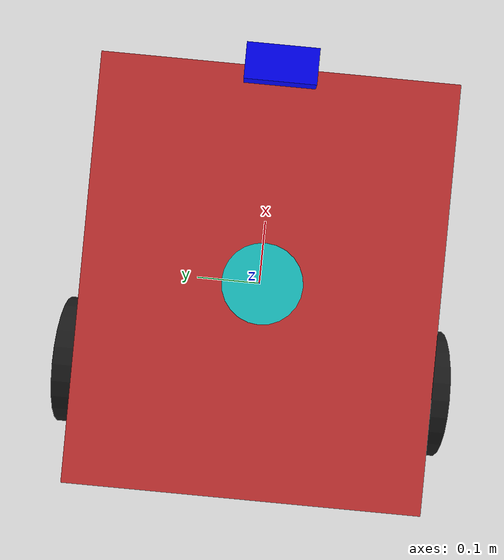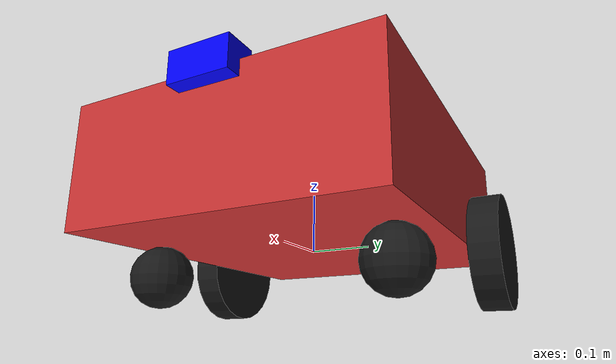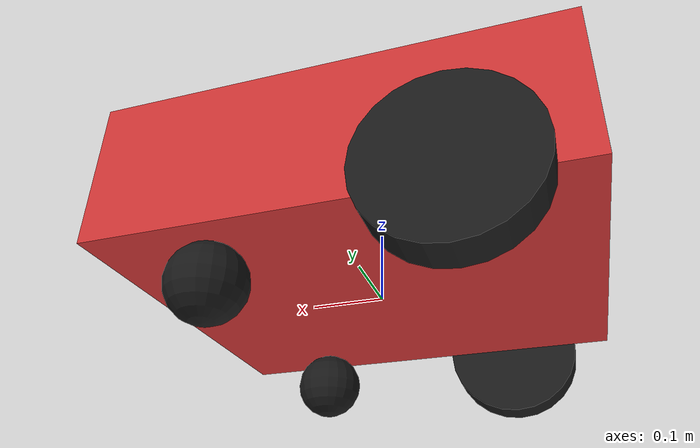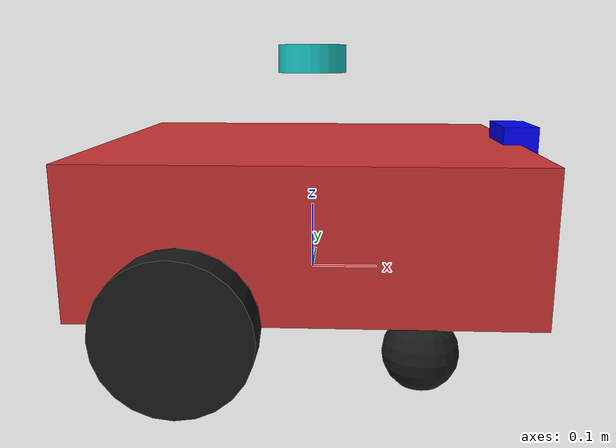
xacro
<?xml version="1.0"?>
<robot name="mobile_robot" xmlns:xacro="http://www.ros.org/wiki/xacro">

  <xacro:property name="chassis_length" value="0.6" />
  <xacro:property name="chassis_width" value="0.5" />
  <xacro:property name="chassis_height" value="0.2" />
  <xacro:property name="chassis_mass" value="5.0" />

  <xacro:property name="drive_wheel_radius" value="0.1" />
  <xacro:property name="drive_wheel_length" value="0.05" />
  <xacro:property name="drive_wheel_mass" value="0.5" />

  <xacro:property name="caster_wheel_radius" value="0.05" /> <xacro:property name="caster_wheel_mass" value="0.2" />

  <xacro:property name="wheel_separation" value="${chassis_width / 2 + drive_wheel_length / 2}" />
  <xacro:property name="drive_wheel_x_offset" value="-0.15" />
  <xacro:property name="caster_wheel_x_offset" value="0.15" />

  <material name="chassis_color">
    <color rgba="0.8 0.2 0.2 1"/>
  </material>
  <material name="wheel_color">
    <color rgba="0.1 0.1 0.1 1"/>
  </material>
  <material name="camera_color">
    <color rgba="0.0 0.0 1.0 1"/>
  </material>
  <material name="lidar_color">
    <color rgba="0.1 0.8 0.8 1"/>
  </material>

  <link name="base_link">
    <visual>
      <origin xyz="0 0 ${drive_wheel_radius}"/>
      <geometry>
        <box size="${chassis_length} ${chassis_width} ${chassis_height}"/>
      </geometry>
      <material name="chassis_color"/>
    </visual>
    <collision>
      <origin xyz="0 0 ${drive_wheel_radius}"/>
      <geometry>
        <box size="${chassis_length} ${chassis_width} ${chassis_height}"/>
      </geometry>
    </collision>
    <inertial>
      <origin xyz="0 0 ${drive_wheel_radius}"/>
      <mass value="${chassis_mass}"/>
      <inertia ixx="0.1" ixy="0" ixz="0" iyy="0.1" iyz="0" izz="0.1"/>
    </inertial>
  </link>
  <gazebo reference="base_link">
    <material>Gazebo/Red</material>
  </gazebo>

  <link name="drive_wheel_left_link">
    <visual>
      <geometry>
        <cylinder radius="${drive_wheel_radius}" length="${drive_wheel_length}"/>
      </geometry>
      <material name="wheel_color"/>
    </visual>
    <collision>
      <geometry>
        <cylinder radius="${drive_wheel_radius}" length="${drive_wheel_length}"/>
      </geometry>
    </collision>
    <inertial>
      <mass value="${drive_wheel_mass}"/>
      <inertia ixx="0.001" ixy="0" ixz="0" iyy="0.001" iyz="0" izz="0.001"/>
    </inertial>
  </link>
  <gazebo reference="drive_wheel_left_link">
    <material>Gazebo/Black</material>
    <mu1>1.0</mu1>
    <mu2>1.0</mu2>
  </gazebo>

  <link name="drive_wheel_right_link">
    <visual>
      <geometry>
        <cylinder radius="${drive_wheel_radius}" length="${drive_wheel_length}"/>
      </geometry>
      <material name="wheel_color"/>
    </visual>
    <collision>
      <geometry>
        <cylinder radius="${drive_wheel_radius}" length="${drive_wheel_length}"/>
      </geometry>
    </collision>
    <inertial>
      <mass value="${drive_wheel_mass}"/>
      <inertia ixx="0.001" ixy="0" ixz="0" iyy="0.001" iyz="0" izz="0.001"/>
    </inertial>
  </link>
  <gazebo reference="drive_wheel_right_link">
    <material>Gazebo/Black</material>
    <mu1>1.0</mu1>
    <mu2>1.0</mu2>
  </gazebo>

  <link name="caster_wheel_left_link">
    <visual>
      <geometry>
        <sphere radius="${caster_wheel_radius}"/>
      </geometry>
      <material name="wheel_color"/>
    </visual>
    <collision>
      <geometry>
        <sphere radius="${caster_wheel_radius}"/>
      </geometry>
    </collision>
    <inertial>
      <mass value="${caster_wheel_mass}"/>
      <inertia ixx="0.0001" ixy="0" ixz="0" iyy="0.0001" iyz="0" izz="0.0001"/>
    </inertial>
  </link>
  <gazebo reference="caster_wheel_left_link">
    <material>Gazebo/Black</material>
    <mu1>0.01</mu1>
    <mu2>0.01</mu2>
  </gazebo>

  <link name="caster_wheel_right_link">
    <visual>
      <geometry>
        <sphere radius="${caster_wheel_radius}"/>
      </geometry>
      <material name="wheel_color"/>
    </visual>
    <collision>
      <geometry>
        <sphere radius="${caster_wheel_radius}"/>
      </geometry>
    </collision>
    <inertial>
      <mass value="${caster_wheel_mass}"/>
      <inertia ixx="0.0001" ixy="0" ixz="0" iyy="0.0001" iyz="0" izz="0.0001"/>
    </inertial>
  </link>
  <gazebo reference="caster_wheel_right_link">
    <material>Gazebo/Black</material>
    <mu1>0.01</mu1>
    <mu2>0.01</mu2>
  </gazebo>

  <link name="camera_link">
    <visual>
      <geometry>
        <box size="0.05 0.1 0.05"/>
      </geometry>
      <material name="camera_color"/>
    </visual>
  </link>

  <link name="imu_link"/>

  <link name="lidar_link">
    <visual>
      <geometry>
        <cylinder radius="0.05" length="0.04"/>
      </geometry>
      <material name="lidar_color"/>
    </visual>
  </link>

  <joint name="drive_wheel_left_joint" type="continuous">
    <origin xyz="${drive_wheel_x_offset} ${wheel_separation} 0" rpy="-1.5708 0 0"/>
    <parent link="base_link"/>
    <child link="drive_wheel_left_link"/>
    <axis xyz="0 0 1"/> </joint>

  <joint name="drive_wheel_right_joint" type="continuous">
    <origin xyz="${drive_wheel_x_offset} -${wheel_separation} 0" rpy="-1.5708 0 0"/>
    <parent link="base_link"/>
    <child link="drive_wheel_right_link"/>
    <axis xyz="0 0 1"/>
  </joint>

  <joint name="caster_wheel_left_joint" type="fixed">
    <origin xyz="${caster_wheel_x_offset} ${chassis_width/2 - 0.05} -${drive_wheel_radius - caster_wheel_radius}"/>
    <parent link="base_link"/>
    <child link="caster_wheel_left_link"/>
  </joint>

  <joint name="caster_wheel_right_joint" type="fixed">
    <origin xyz="${caster_wheel_x_offset} -${chassis_width/2 - 0.05} -${drive_wheel_radius - caster_wheel_radius}"/>
    <parent link="base_link"/>
    <child link="caster_wheel_right_link"/>
  </joint>

  <joint name="camera_joint" type="fixed">
    <origin xyz="${chassis_length/2} 0 ${drive_wheel_radius + chassis_height/2}" rpy="0 0 0"/>
    <parent link="base_link"/>
    <child link="camera_link"/>
  </joint>

  <joint name="imu_joint" type="fixed">
    <origin xyz="0 0 ${drive_wheel_radius}"/>
    <parent link="base_link"/>
    <child link="imu_link"/>
  </joint>

  <joint name="lidar_joint" type="fixed">
    <origin xyz="0 0 ${drive_wheel_radius + chassis_height + 0.02}"/>
    <parent link="base_link"/>
    <child link="lidar_link"/>
  </joint>

  <gazebo>
    <plugin name="gazebo_ros_diff_drive" filename="libgazebo_ros_diff_drive.so">
      <ros>
        <namespace>/</namespace>
        <remapping>cmd_vel:=/cmd_vel</remapping>
      </ros>

      <left_joint>drive_wheel_left_joint</left_joint>
      <right_joint>drive_wheel_right_joint</right_joint>

      <wheel_separation>${wheel_separation * 2}</wheel_separation>
      <wheel_diameter>${drive_wheel_radius * 2}</wheel_diameter>
      <max_wheel_torque>20</max_wheel_torque>
      <max_wheel_acceleration>1.0</max_wheel_acceleration>
      <update_rate>50</update_rate>

      <odometry_topic>odom</odometry_topic>
      <odometry_frame>odom</odometry_frame>
      <robot_base_frame>base_link</robot_base_frame>
      <publish_odometry_tf>true</publish_odometry_tf>
      <publish_wheel_tf>false</publish_wheel_tf>
    </plugin>
  </gazebo>

  <gazebo reference="camera_link">
    <sensor type="camera" name="camera_sensor">
      <update_rate>30</update_rate>
      <camera>
        <horizontal_fov>1.047</horizontal_fov>
        <image>
          <width>640</width>
          <height>480</height>
          <format>R8G8B8</format>
        </image>
        <clip>
          <near>0.1</near>
          <far>100</far>
        </clip>
        <noise>
          <type>gaussian</type>
          <mean>0.0</mean>
          <stddev>0.007</stddev>
        </noise>
      </camera>
      <plugin name="gazebo_ros_camera" filename="libgazebo_ros_camera.so">
        <image_topic_name>/camera_sensor/image_raw</image_topic_name>
        <camera_info_topic_name>/camera_sensor/camera_info</camera_info_topic_name>
        <frame_name>camera_link</frame_name>
      </plugin>
    </sensor>
  </gazebo>

  <gazebo reference="imu_link">
    <sensor name="imu_sensor" type="imu">
      <update_rate>100</update_rate>
      <plugin filename="libgazebo_ros_imu_sensor.so" name="imu_plugin">
        <ros>
          <namespace>/imu</namespace>
          <remapping>~/out:=data</remapping>
        </ros>
      </plugin>
    </sensor>
  </gazebo>

  <gazebo reference="lidar_link">
    <sensor type="ray" name="lidar_360">
      <pose>0 0 0 0 0 0</pose>
      <visualize>true</visualize>
      <update_rate>10</update_rate>
      <ray>
        <scan>
          <horizontal>
            <samples>360</samples> <resolution>1</resolution>
            <min_angle>-3.14159</min_angle>
            <max_angle>3.14159</max_angle>
          </horizontal>
        </scan>
        <range>
          <min>0.15</min> <max>12.0</max> <resolution>0.01</resolution>
        </range>
      </ray>

      <plugin name="lidar_controller" filename="libgazebo_ros_ray_sensor.so">
        <ros>
          <remapping>~/out:=/scan</remapping>
        </ros>
        <output_type>sensor_msgs/LaserScan</output_type>
        <frame_name>lidar_link</frame_name>
      </plugin>

    </sensor>
  </gazebo>

</robot>
